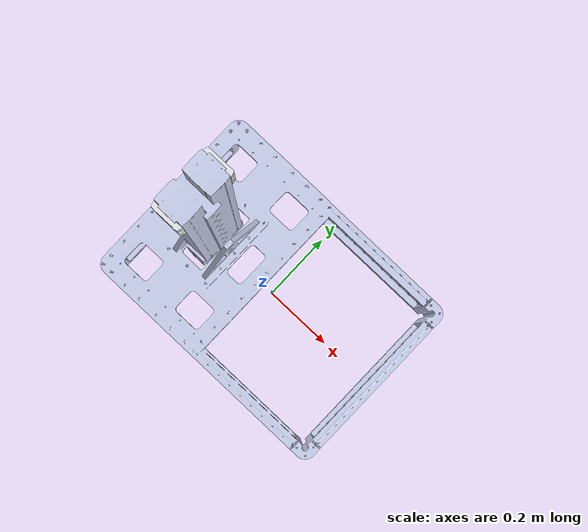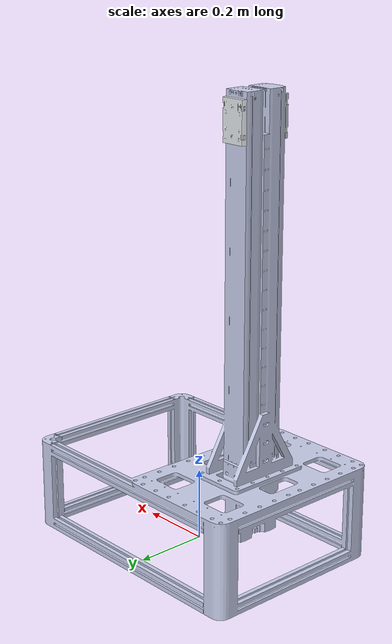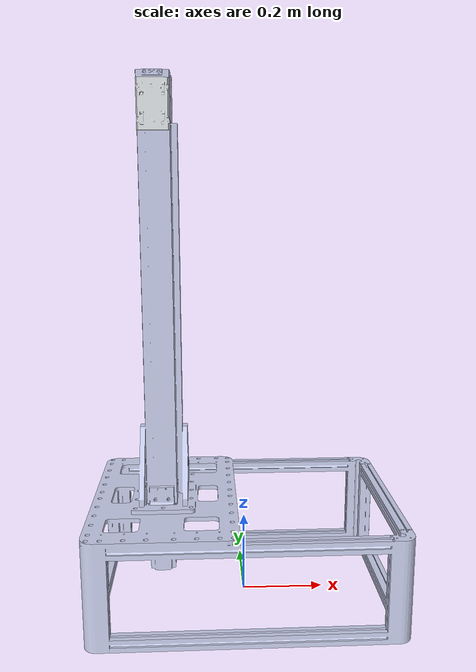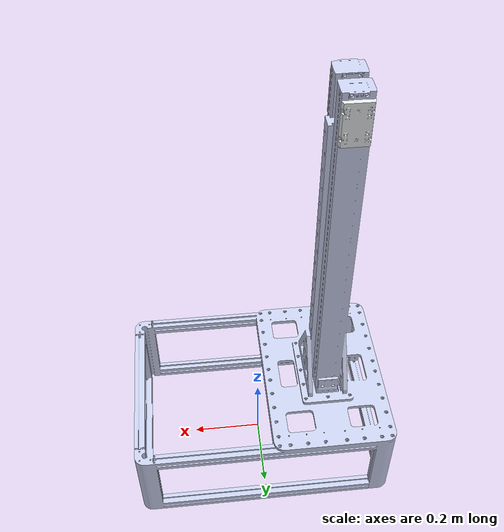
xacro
<?xml version="1.0"?>

<robot
  name="timda_body"
  xmlns:xacro="http://www.ros.org/wiki/xacro">

  <xacro:include filename="$(find timda_body)/urdf/timda_body.gazebo.xacro" />

  <link
    name="base_link">
    <inertial>
      <origin
        xyz="0.0 0 0"
        rpy="0 0 0" />
      <mass
        value="2.072" />
      <inertia
        ixx="1"
        ixy="0"
        ixz="0"
        iyy="1"
        iyz="0"
        izz="1" />
    </inertial>
    <visual>
      <origin
        xyz="0 0 0"
        rpy="0 0 0" />
      <geometry>
        <mesh
          filename="package://timda_body/meshes/base_link.STL" />
      </geometry>
      <material
        name="">
        <color
          rgba="0.79216 0.81961 0.93333 1" />
      </material>
    </visual>
    <collision>
      <origin
        xyz="0 0 0"
        rpy="0 0 0" />
      <geometry>
        <mesh
          filename="package://timda_body/meshes/base_link.STL" />
      </geometry>
    </collision>
  </link>
  <link
    name="slide_right">
    <inertial>
      <origin
        xyz="1.5718E-05 -0.006626 2.4586E-06"
        rpy="0 0 0" />
      <mass
        value="0.24709" />
      <inertia
        ixx="1"
        ixy="0"
        ixz="0"
        iyy="1"
        iyz="0"
        izz="1" />
    </inertial>
    <visual>
      <origin
        xyz="0 0 0"
        rpy="0 0 0" />
      <geometry>
        <mesh
          filename="package://timda_body/meshes/slide_right.STL" />
      </geometry>
      <material
        name="">
        <color
          rgba="0.89804 0.91765 0.92941 1" />
      </material>
    </visual>
    <collision>
      <origin
        xyz="0 0 0"
        rpy="0 0 0" />
      <geometry>
        <mesh
          filename="package://timda_body/meshes/slide_right.STL" />
      </geometry>
    </collision>
  </link>
  <joint
    name="joint_right"
    type="prismatic">
    <origin
      xyz="-0.2 0.0765 1.1815"
      rpy="0 0 0" />
    <parent
      link="base_link" />
    <child
      link="slide_right" />
    <axis
      xyz="0 0 1" />
    <limit
      lower="-0.8"
      upper="0"
      effort="9000"
      velocity="6.5" />
    <dynamics damping="7"/>
  </joint>
  <link
    name="slide_left">
    <inertial>
      <origin
        xyz="-1.5722E-05 0.006626 2.4586E-06"
        rpy="0 0 0" />
      <mass
        value="0.24709" />
      <inertia
        ixx="1"
        ixy="0"
        ixz="0"
        iyy="1"
        iyz="0"
        izz="1" />
    </inertial>
    <visual>
      <origin
        xyz="0 0 0"
        rpy="0 0 0" />
      <geometry>
        <mesh
          filename="package://timda_body/meshes/slide_right.STL" />
      </geometry>
      <material
        name="">
        <color
          rgba="0.89804 0.91765 0.92941 1" />
      </material>
    </visual>
    <collision>
      <origin
        xyz="0 0 0"
        rpy="0 0 0" />
      <geometry>
        <mesh
          filename="package://timda_body/meshes/slide_right.STL" />
      </geometry>
    </collision>
  </link>
  <joint
    name="joint_left"
    type="prismatic">
    <origin
      xyz="-0.2 -0.0765 1.1815"
      rpy="0 0 3.1416" />
    <parent
      link="base_link" />
    <child
      link="slide_left" />
    <axis
      xyz="0 0 1" />
    <limit
      lower="-0.8"
      upper="0"
      effort="9000"
      velocity="6.5" />
    <dynamics damping="7"/>
  </joint>

  <transmission name="slide_tran_r">
    <type>transmission_interface/SimpleTransmission</type>
    <joint name="joint_right">
      <hardwareInterface>hardware_interface/EffortJointInterface</hardwareInterface>
    </joint>
    <actuator name="slide_motor_r">
      <hardwareInterface>hardware_interface/EffortJointInterface</hardwareInterface>
      <mechanicalReduction>1</mechanicalReduction>
    </actuator>
  </transmission>

  <transmission name="slide_tran_l">
    <type>transmission_interface/SimpleTransmission</type>
    <joint name="joint_left">
      <hardwareInterface>hardware_interface/EffortJointInterface</hardwareInterface>
    </joint>
    <actuator name="slide_motor_l">
      <hardwareInterface>hardware_interface/EffortJointInterface</hardwareInterface>
      <mechanicalReduction>1</mechanicalReduction>
    </actuator>
  </transmission>

</robot>
